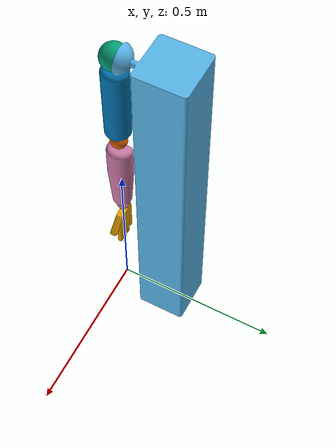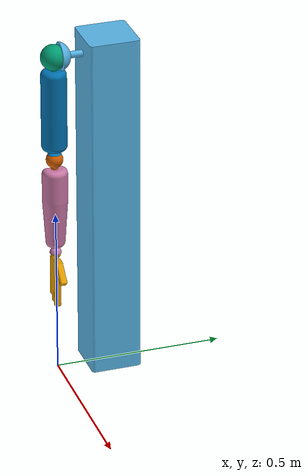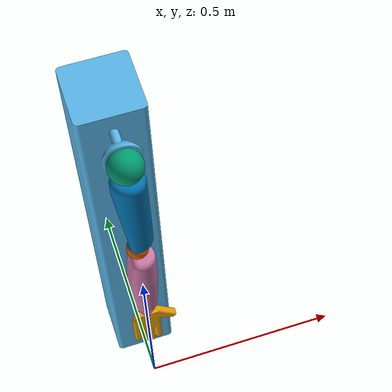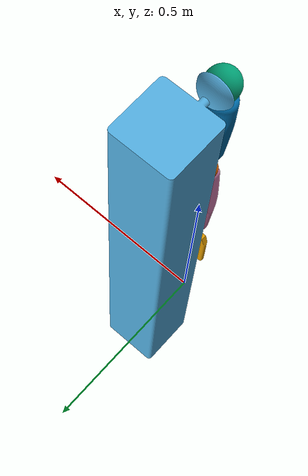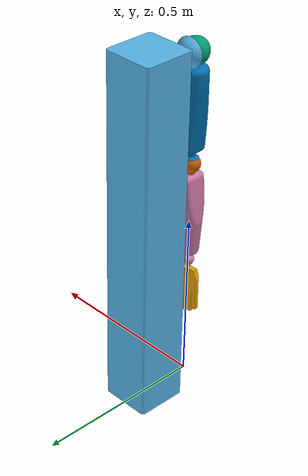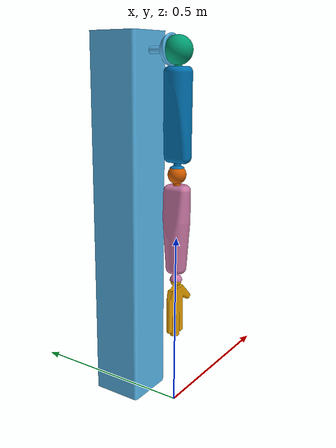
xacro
<?xml version="1.0"?>
<robot name="7DOF_ROBOT">
    <!-- World -->
    <link name="world"/>

    <!-- World link Base -->
    <joint name="fixed" type="fixed">
        <origin xyz="0.0 0.0 0.0" rpy="0.0 0.0 0.0"/>
        <parent link="world"/>
        <child link="Base"/>
    </joint>

    <!-- Base  -->
    <link name="Base">
        <visual>
            <geometry>
                <mesh filename="package://human_arm_simulation/meshes/Base.STL" />
            </geometry>
            <origin xyz="0.0 0.16 0.0" rpy="0.0 0.0 -1.57"/>
        </visual>
        <collision>
            <geometry>
                <mesh filename="package://human_arm_simulation/meshes/Base.STL" />
            </geometry>
            <origin xyz="0.0 0.16 0.0" rpy="0.0 0.0 -1.57"/>
        </collision>
    </link>

    <joint name="q1" type="revolute">
        <origin xyz="0.0 0.0 1.0" rpy="1.57 0.0 0.0"/>
        <parent link="Base"/>
        <child link="shoulder1"/>
        <axis xyz="0 0 1"/>
        <limit lower="-0.87" upper="3.14" effort="1000" velocity="0.0"/>
    </joint>

    <!-- Shoulde1 -->
    <link name="shoulder1">
        <visual>
            <geometry>
                <mesh filename="package://human_arm_simulation/meshes/Shoulder1.STL"/>
            </geometry>
        </visual>
        <collision>
            <geometry>
                <mesh filename="package://human_arm_simulation/meshes/Shoulder1.STL"/>
            </geometry>
        </collision>
    </link>

    <joint name="q2" type="revolute">
        <origin xyz="0.0 0.0 0.0" rpy="1.57 -1.57  0.0"/>
        <parent link="shoulder1"/>
        <child link="shoulder2"/>
        <axis xyz="0 0 1"/>
        <limit lower="0.0" upper="1.57" effort="1000" velocity="0.0"/>
    </joint>

    <!-- Shoulde2 -->
    <link name="shoulder2"/>

    <joint name="q3" type="revolute">
        <origin xyz="0.0 0.0 0.0" rpy="-1.57 -1.57 0.0"/>
        <parent link="shoulder2"/>
        <child link="shoulder3"/>
        <axis xyz="0 0 1"/>
        <limit lower="0.0" upper="3.14" effort="1000" velocity="0.0"/>
    </joint>

    <!-- Shoulde3 -->
    <link name="shoulder3">
        <visual>
            <geometry>
                <mesh filename="package://human_arm_simulation/meshes/Shoulder3.STL"/>
            </geometry>
            <origin xyz="0.165 0.0 0.0" rpy="-1.57 0.0 0.0"/>
        </visual>
        <collision>
            <geometry>
                <mesh filename="package://human_arm_simulation/meshes/Shoulder3.STL"/>
            </geometry>
            <origin xyz="0.165 0.0 0.0" rpy="-1.57 0.0 0.0"/>
        </collision>
    </link>

    <joint name="q4" type="revolute">
        <origin xyz="0.32 0.0 0.0" rpy="-1.57 -1.57 0.0"/>
        <parent link="shoulder3"/>
        <child link="elbow"/>
        <axis xyz="0 0 1"/>
        <limit lower="0" upper="2.61" effort="1000" velocity="0.0"/>
    </joint>

    <!-- Elbow -->
    <link name="elbow">
        <visual>
            <geometry>
                <mesh filename="package://human_arm_simulation/meshes/Elbow.STL"/>
            </geometry>
        </visual>
        <collision>
            <geometry>
                <mesh filename="package://human_arm_simulation/meshes/Elbow.STL"/>
            </geometry>
        </collision>
    </link>

    <joint name="q5" type="revolute">
        <origin xyz="0.0 0.355 0.0" rpy="-1.57 0.0 0.0"/>
        <parent link="elbow"/>
        <child link="wrist1"/>
        <axis xyz="0 0 1"/>
        <limit lower="-1.57" upper="1.57" effort="1000" velocity="0.0"/>
    </joint>

    <!-- Wrist1 -->
    <link name="wrist1">
        <visual>
            <geometry>
                <mesh filename="package://human_arm_simulation/meshes/Wrist1.STL"/>
            </geometry>
            <origin xyz="0.0 0.0 -0.2" rpy="0.0 0.0 -1.57"/>
        </visual>
        <collision>
            <geometry>
                <mesh filename="package://human_arm_simulation/meshes/Wrist1.STL"/>
            </geometry>
            <origin xyz="0.0 0.0 -0.2" rpy="0.0 0.0 -1.57"/>
        </collision>
    </link>

    <joint name="q6" type="revolute">
        <origin xyz="0.0 0.0 -0.05" rpy="1.57 -1.57 0.0"/>
        <parent link="wrist1"/>
        <child link="wrist2"/>
        <axis xyz="0 0 1"/>
        <limit lower="-1.57" upper="1.04" effort="1000" velocity="0.0"/>
    </joint>

    <!-- Wrist2 -->
    <link name="wrist2"/>

    <joint name="q7" type="revolute">
        <origin xyz="0.0 0.0 0.0" rpy="1.57 0.0 0.0"/>
        <parent link="wrist2"/>
        <child link="wrist3"/>
        <axis xyz="0 0 1"/>
        <limit lower="-0.34" upper="0.69" effort="1000" velocity="0.0"/>
    </joint>

    <!-- Wrist3 -->
    <link name="wrist3">
        <visual>
            <geometry>
                <mesh filename="package://human_arm_simulation/meshes/Wrist3.STL"/>
            </geometry>
            <origin xyz="0.0 0.0 0.0" rpy="0 0.0 0.0"/>
        </visual>
        <collision>
            <geometry>
                <mesh filename="package://human_arm_simulation/meshes/Wrist3.STL"/>
            </geometry>
            <origin xyz="0.0 0.0 0.0" rpy="0 0.0 0.0"/>
        </collision>
    </link>

</robot>
